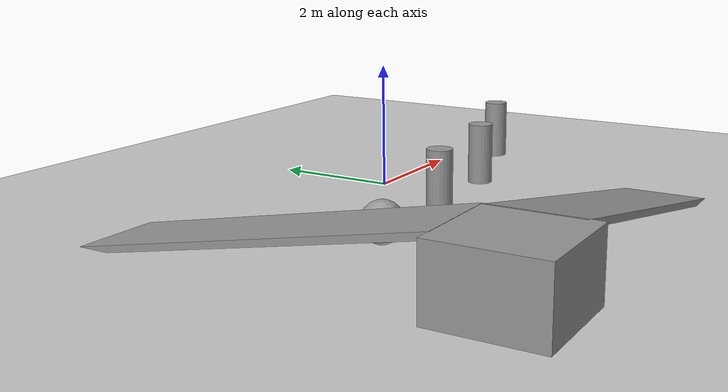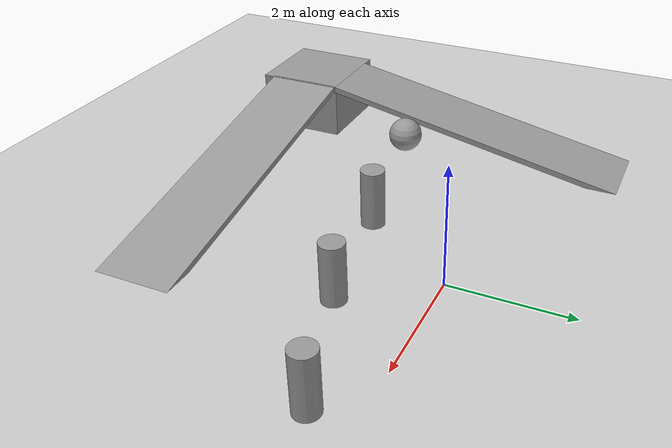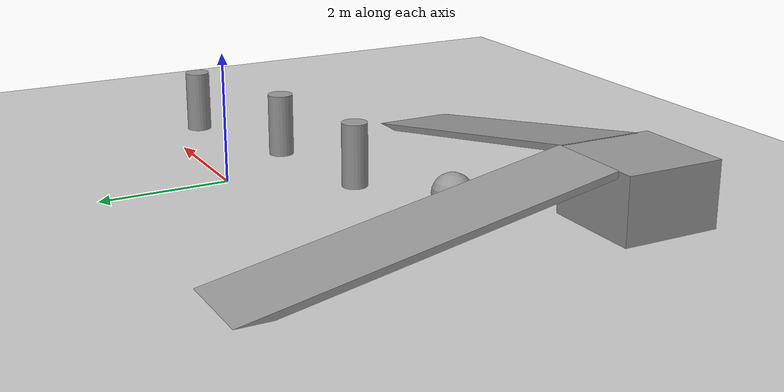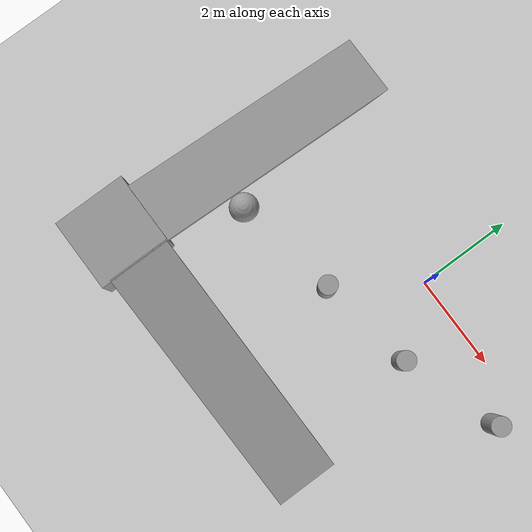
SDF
<sdf version="1.7">
 <world name="default">
  <model name="ground_plane">
   <static>1</static>
   <link name="link">
    <collision name="collision">
     <geometry><plane><normal>0 0 1</normal><size>100 100</size></plane></geometry>
     <surface>
      <contact><collide_bitmask>65535</collide_bitmask></contact>
      <friction><ode><mu>100</mu><mu2>50</mu2></ode></friction>
     </surface>
    </collision>
    <visual name="visual">
     <cast_shadows>0</cast_shadows>
     <geometry><plane><normal>0 0 1</normal><size>100 100</size></plane></geometry>
     <material>
      <script><uri>file://media/materials/scripts/gazebo.material</uri><name>Gazebo/Grey</name></script>
     </material>
    </visual>
   </link>
  </model>
  <model name="boxstair1">
   <link name="link">
    <inertial>
     <mass>1</mass>
     <inertia>
      <ixx>0.166667</ixx>
      <ixy>0</ixy>
      <ixz>0</ixz>
      <iyy>0.166667</iyy>
      <iyz>0</iyz>
      <izz>0.166667</izz>
     </inertia>
    </inertial>
    <visual name="visual">
     <geometry><box><size>1.55 1.55 1</size></box></geometry>
     <material>
      <script><name>Gazebo/Grey</name><uri>file://media/materials/scripts/gazebo.material</uri></script>
      <shader type="pixel"><normal_map>__default__</normal_map></shader>
      <ambient>0.3 0.3 0.3 1</ambient>
      <diffuse>0.7 0.7 0.7 1</diffuse>
      <specular>0.01 0.01 0.01 1</specular>
      <emissive>0 0 0 1</emissive>
     </material>
    </visual>
    <collision name="collision">
     <geometry><box><size>1.55 1.55 1</size></box></geometry>
     <surface>
      <friction>
       <ode><mu>1</mu><mu2>1</mu2><fdir1>0 0 0</fdir1><slip1>0</slip1><slip2>0</slip2></ode>
       <torsional>
        <coefficient>1</coefficient>
        <patch_radius>0</patch_radius>
        <surface_radius>0</surface_radius>
        <use_patch_radius>1</use_patch_radius>
        <ode><slip>0</slip></ode>
       </torsional>
      </friction>
      <bounce><restitution_coefficient>0</restitution_coefficient><threshold>1e+06</threshold></bounce>
      <contact>
       <collide_without_contact>0</collide_without_contact>
       <collide_without_contact_bitmask>1</collide_without_contact_bitmask>
       <collide_bitmask>1</collide_bitmask>
       <ode>
        <soft_cfm>0</soft_cfm>
        <soft_erp>0.2</soft_erp>
        <kp>1e+13</kp>
        <kd>1</kd>
        <max_vel>0.01</max_vel>
        <min_depth>0</min_depth>
       </ode>
       <bullet>
        <split_impulse>1</split_impulse>
        <split_impulse_penetration_threshold>-0.01</split_impulse_penetration_threshold>
        <soft_cfm>0</soft_cfm>
        <soft_erp>0.2</soft_erp>
        <kp>1e+13</kp>
        <kd>1</kd>
       </bullet>
      </contact>
     </surface>
    </collision>
   </link>
   <static>1</static>
   <pose>-4.36885 -4.35438 0.540139 0 -0 0</pose>
  </model>
  <model name="obstacle1_clone">
   <link name="link">
    <inertial>
     <mass>1</mass>
     <inertia><ixx>0.145833</ixx><ixy>0</ixy><ixz>0</ixz><iyy>0.145833</iyy><iyz>0</iyz><izz>0.125</izz></inertia>
    </inertial>
    <visual name="visual">
     <geometry><cylinder><radius>0.2</radius><length>1</length></cylinder></geometry>
     <material>
      <script><name>Gazebo/Grey</name><uri>file://media/materials/scripts/gazebo.material</uri></script>
      <shader type="pixel"><normal_map>__default__</normal_map></shader>
      <ambient>0.3 0.3 0.3 1</ambient>
      <diffuse>0.7 0.7 0.7 1</diffuse>
      <specular>0.01 0.01 0.01 1</specular>
      <emissive>0 0 0 1</emissive>
     </material>
    </visual>
    <collision name="collision">
     <geometry><cylinder><radius>0.2</radius><length>1</length></cylinder></geometry>
     <surface>
      <friction>
       <ode><mu>1</mu><mu2>1</mu2><fdir1>0 0 0</fdir1><slip1>0</slip1><slip2>0</slip2></ode>
       <torsional>
        <coefficient>1</coefficient>
        <patch_radius>0</patch_radius>
        <surface_radius>0</surface_radius>
        <use_patch_radius>1</use_patch_radius>
        <ode><slip>0</slip></ode>
       </torsional>
      </friction>
      <bounce><restitution_coefficient>0</restitution_coefficient><threshold>1e+06</threshold></bounce>
      <contact>
       <collide_without_contact>0</collide_without_contact>
       <collide_without_contact_bitmask>1</collide_without_contact_bitmask>
       <collide_bitmask>1</collide_bitmask>
       <ode>
        <soft_cfm>0</soft_cfm>
        <soft_erp>0.2</soft_erp>
        <kp>1e+13</kp>
        <kd>1</kd>
        <max_vel>0.01</max_vel>
        <min_depth>0</min_depth>
       </ode>
       <bullet>
        <split_impulse>1</split_impulse>
        <split_impulse_penetration_threshold>-0.01</split_impulse_penetration_threshold>
        <soft_cfm>0</soft_cfm>
        <soft_erp>0.2</soft_erp>
        <kp>1e+13</kp>
        <kd>1</kd>
       </bullet>
      </contact>
     </surface>
    </collision>
   </link>
   <static>1</static>
   <pose>0.95714 -1.32209 0.5 0 -0 0</pose>
  </model>
  <model name="obstacle1_clone_0">
   <link name="link">
    <inertial>
     <mass>1</mass>
     <inertia><ixx>0.145833</ixx><ixy>0</ixy><ixz>0</ixz><iyy>0.145833</iyy><iyz>0</iyz><izz>0.125</izz></inertia>
    </inertial>
    <visual name="visual">
     <geometry><cylinder><radius>0.2</radius><length>1</length></cylinder></geometry>
     <material>
      <script><name>Gazebo/Grey</name><uri>file://media/materials/scripts/gazebo.material</uri></script>
      <shader type="pixel"><normal_map>__default__</normal_map></shader>
      <ambient>0.3 0.3 0.3 1</ambient>
      <diffuse>0.7 0.7 0.7 1</diffuse>
      <specular>0.01 0.01 0.01 1</specular>
      <emissive>0 0 0 1</emissive>
     </material>
    </visual>
    <collision name="collision">
     <geometry><cylinder><radius>0.2</radius><length>1</length></cylinder></geometry>
     <surface>
      <friction>
       <ode><mu>1</mu><mu2>1</mu2><fdir1>0 0 0</fdir1><slip1>0</slip1><slip2>0</slip2></ode>
       <torsional>
        <coefficient>1</coefficient>
        <patch_radius>0</patch_radius>
        <surface_radius>0</surface_radius>
        <use_patch_radius>1</use_patch_radius>
        <ode><slip>0</slip></ode>
       </torsional>
      </friction>
      <bounce><restitution_coefficient>0</restitution_coefficient><threshold>1e+06</threshold></bounce>
      <contact>
       <collide_without_contact>0</collide_without_contact>
       <collide_without_contact_bitmask>1</collide_without_contact_bitmask>
       <collide_bitmask>1</collide_bitmask>
       <ode>
        <soft_cfm>0</soft_cfm>
        <soft_erp>0.2</soft_erp>
        <kp>1e+13</kp>
        <kd>1</kd>
        <max_vel>0.01</max_vel>
        <min_depth>0</min_depth>
       </ode>
       <bullet>
        <split_impulse>1</split_impulse>
        <split_impulse_penetration_threshold>-0.01</split_impulse_penetration_threshold>
        <soft_cfm>0</soft_cfm>
        <soft_erp>0.2</soft_erp>
        <kp>1e+13</kp>
        <kd>1</kd>
       </bullet>
      </contact>
     </surface>
    </collision>
   </link>
   <static>1</static>
   <pose>-1.08286 -1.64673 0.5 0 -0 0</pose>
  </model>
  <model name="obstacle2_clone">
   <link name="link">
    <inertial>
     <mass>1</mass>
     <inertia><ixx>0.1</ixx><ixy>0</ixy><ixz>0</ixz><iyy>0.1</iyy><iyz>0</iyz><izz>0.1</izz></inertia>
    </inertial>
    <visual name="visual">
     <geometry><sphere><radius>0.3</radius></sphere></geometry>
     <material>
      <script><name>Gazebo/Grey</name><uri>file://media/materials/scripts/gazebo.material</uri></script>
      <shader type="pixel"><normal_map>__default__</normal_map></shader>
      <ambient>0.3 0.3 0.3 1</ambient>
      <diffuse>0.7 0.7 0.7 1</diffuse>
      <specular>0.01 0.01 0.01 1</specular>
      <emissive>0 0 0 1</emissive>
     </material>
    </visual>
    <collision name="collision">
     <geometry><sphere><radius>0.3</radius></sphere></geometry>
     <surface>
      <friction>
       <ode><mu>1</mu><mu2>1</mu2><fdir1>0 0 0</fdir1><slip1>0</slip1><slip2>0</slip2></ode>
       <torsional>
        <coefficient>1</coefficient>
        <patch_radius>0</patch_radius>
        <surface_radius>0</surface_radius>
        <use_patch_radius>1</use_patch_radius>
        <ode><slip>0</slip></ode>
       </torsional>
      </friction>
      <bounce><restitution_coefficient>0</restitution_coefficient><threshold>1e+06</threshold></bounce>
      <contact>
       <collide_without_contact>0</collide_without_contact>
       <collide_without_contact_bitmask>1</collide_without_contact_bitmask>
       <collide_bitmask>1</collide_bitmask>
       <ode>
        <soft_cfm>0</soft_cfm>
        <soft_erp>0.2</soft_erp>
        <kp>1e+13</kp>
        <kd>1</kd>
        <max_vel>0.01</max_vel>
        <min_depth>0</min_depth>
       </ode>
       <bullet>
        <split_impulse>1</split_impulse>
        <split_impulse_penetration_threshold>-0.01</split_impulse_penetration_threshold>
        <soft_cfm>0</soft_cfm>
        <soft_erp>0.2</soft_erp>
        <kp>1e+13</kp>
        <kd>1</kd>
       </bullet>
      </contact>
     </surface>
    </collision>
   </link>
   <static>1</static>
   <pose>-3.32144 -2.02069 0.5 0 -0 0</pose>
  </model>
  <model name="obstacle1_clone_clone">
   <link name="link">
    <inertial>
     <mass>1</mass>
     <inertia><ixx>0.145833</ixx><ixy>0</ixy><ixz>0</ixz><iyy>0.145833</iyy><iyz>0</iyz><izz>0.125</izz></inertia>
    </inertial>
    <visual name="visual">
     <geometry><cylinder><radius>0.2</radius><length>1</length></cylinder></geometry>
     <material>
      <script><name>Gazebo/Grey</name><uri>file://media/materials/scripts/gazebo.material</uri></script>
      <shader type="pixel"><normal_map>__default__</normal_map></shader>
      <ambient>0.3 0.3 0.3 1</ambient>
      <diffuse>0.7 0.7 0.7 1</diffuse>
      <specular>0.01 0.01 0.01 1</specular>
      <emissive>0 0 0 1</emissive>
     </material>
    </visual>
    <collision name="collision">
     <geometry><cylinder><radius>0.2</radius><length>1</length></cylinder></geometry>
     <surface>
      <friction>
       <ode><mu>1</mu><mu2>1</mu2><fdir1>0 0 0</fdir1><slip1>0</slip1><slip2>0</slip2></ode>
       <torsional>
        <coefficient>1</coefficient>
        <patch_radius>0</patch_radius>
        <surface_radius>0</surface_radius>
        <use_patch_radius>1</use_patch_radius>
        <ode><slip>0</slip></ode>
       </torsional>
      </friction>
      <bounce><restitution_coefficient>0</restitution_coefficient><threshold>1e+06</threshold></bounce>
      <contact>
       <collide_without_contact>0</collide_without_contact>
       <collide_without_contact_bitmask>1</collide_without_contact_bitmask>
       <collide_bitmask>1</collide_bitmask>
       <ode>
        <soft_cfm>0</soft_cfm>
        <soft_erp>0.2</soft_erp>
        <kp>1e+13</kp>
        <kd>1</kd>
        <max_vel>0.01</max_vel>
        <min_depth>0</min_depth>
       </ode>
       <bullet>
        <split_impulse>1</split_impulse>
        <split_impulse_penetration_threshold>-0.01</split_impulse_penetration_threshold>
        <soft_cfm>0</soft_cfm>
        <soft_erp>0.2</soft_erp>
        <kp>1e+13</kp>
        <kd>1</kd>
       </bullet>
      </contact>
     </surface>
    </collision>
   </link>
   <static>1</static>
   <pose>2.99838 -0.642649 0.5 0 -0 0</pose>
  </model>
  <model name="fIX">
   <link name="link_3">
    <inertial>
     <mass>0.73459</mass>
     <inertia><ixx>0.106693</ixx><ixy>0</ixy><ixz>0</ixz><iyy>1.88061</iyy><iyz>0</iyz><izz>1.98606</izz></inertia>
    </inertial>
    <pose>-0.960779 -4.10674 -0.014891 3.14159 -0.192362 3.14159</pose>
    <kinematic>1</kinematic>
    <visual name="visual">
     <geometry><box><size>5.54174 1.31634 0.100684</size></box></geometry>
     <material>
      <lighting>1</lighting>
      <script><uri>file://media/materials/scripts/gazebo.material</uri><name>Gazebo/Grey</name></script>
      <shader type="pixel"><normal_map>__default__</normal_map></shader>
     </material>
    </visual>
    <collision name="collision">
     <geometry><box><size>5.54174 1.31634 0.100684</size></box></geometry>
     <surface>
      <friction>
       <ode><mu>1</mu><mu2>1</mu2><fdir1>0 0 0</fdir1><slip1>0</slip1><slip2>0</slip2></ode>
       <torsional>
        <coefficient>1</coefficient>
        <patch_radius>0</patch_radius>
        <surface_radius>0</surface_radius>
        <use_patch_radius>1</use_patch_radius>
        <ode><slip>0</slip></ode>
       </torsional>
      </friction>
      <bounce><restitution_coefficient>0</restitution_coefficient><threshold>1e+06</threshold></bounce>
      <contact>
       <collide_without_contact>0</collide_without_contact>
       <collide_without_contact_bitmask>1</collide_without_contact_bitmask>
       <collide_bitmask>1</collide_bitmask>
       <ode>
        <soft_cfm>0</soft_cfm>
        <soft_erp>0.2</soft_erp>
        <kp>1e+13</kp>
        <kd>1</kd>
        <max_vel>0.01</max_vel>
        <min_depth>0</min_depth>
       </ode>
       <bullet>
        <split_impulse>1</split_impulse>
        <split_impulse_penetration_threshold>-0.01</split_impulse_penetration_threshold>
        <soft_cfm>0</soft_cfm>
        <soft_erp>0.2</soft_erp>
        <kp>1e+13</kp>
        <kd>1</kd>
       </bullet>
      </contact>
     </surface>
    </collision>
   </link>
   <link name="link_3_clone">
    <inertial>
     <mass>0.73459</mass>
     <inertia><ixx>0.106693</ixx><ixy>0</ixy><ixz>0</ixz><iyy>1.88061</iyy><iyz>0</iyz><izz>1.98606</izz></inertia>
    </inertial>
    <pose>-4.29399 -0.715361 -0.014891 3.14159 -0.192362 -1.56898</pose>
    <kinematic>1</kinematic>
    <visual name="visual">
     <geometry><box><size>5.54174 1.31634 0.100684</size></box></geometry>
     <material>
      <lighting>1</lighting>
      <script><uri>file://media/materials/scripts/gazebo.material</uri><name>Gazebo/Grey</name></script>
      <shader type="pixel"><normal_map>__default__</normal_map></shader>
     </material>
    </visual>
    <collision name="collision">
     <geometry><box><size>5.54174 1.31634 0.100684</size></box></geometry>
     <surface>
      <friction>
       <ode><mu>1</mu><mu2>1</mu2><fdir1>0 0 0</fdir1><slip1>0</slip1><slip2>0</slip2></ode>
       <torsional>
        <coefficient>1</coefficient>
        <patch_radius>0</patch_radius>
        <surface_radius>0</surface_radius>
        <use_patch_radius>1</use_patch_radius>
        <ode><slip>0</slip></ode>
       </torsional>
      </friction>
      <bounce><restitution_coefficient>0</restitution_coefficient><threshold>1e+06</threshold></bounce>
      <contact>
       <collide_without_contact>0</collide_without_contact>
       <collide_without_contact_bitmask>1</collide_without_contact_bitmask>
       <collide_bitmask>1</collide_bitmask>
       <ode>
        <soft_cfm>0</soft_cfm>
        <soft_erp>0.2</soft_erp>
        <kp>1e+13</kp>
        <kd>1</kd>
        <max_vel>0.01</max_vel>
        <min_depth>0</min_depth>
       </ode>
       <bullet>
        <split_impulse>1</split_impulse>
        <split_impulse_penetration_threshold>-0.01</split_impulse_penetration_threshold>
        <soft_cfm>0</soft_cfm>
        <soft_erp>0.2</soft_erp>
        <kp>1e+13</kp>
        <kd>1</kd>
       </bullet>
      </contact>
     </surface>
    </collision>
   </link>
   <static>1</static>
   <pose>0.041464 -0.16344 0.480304 0 -0 0</pose>
  </model>
 </world>
</sdf>
